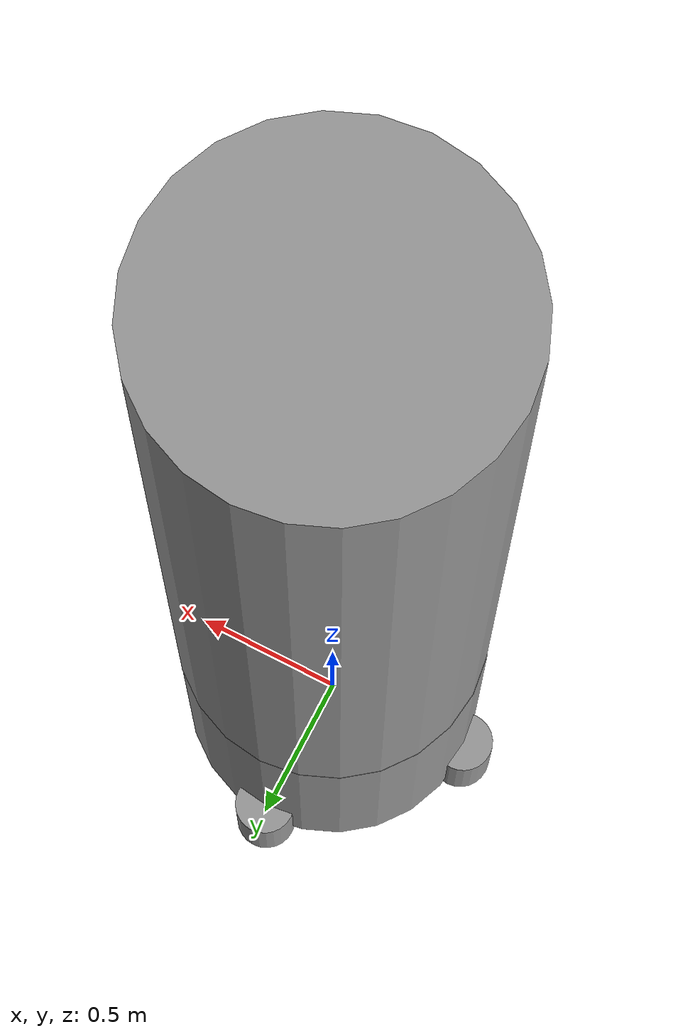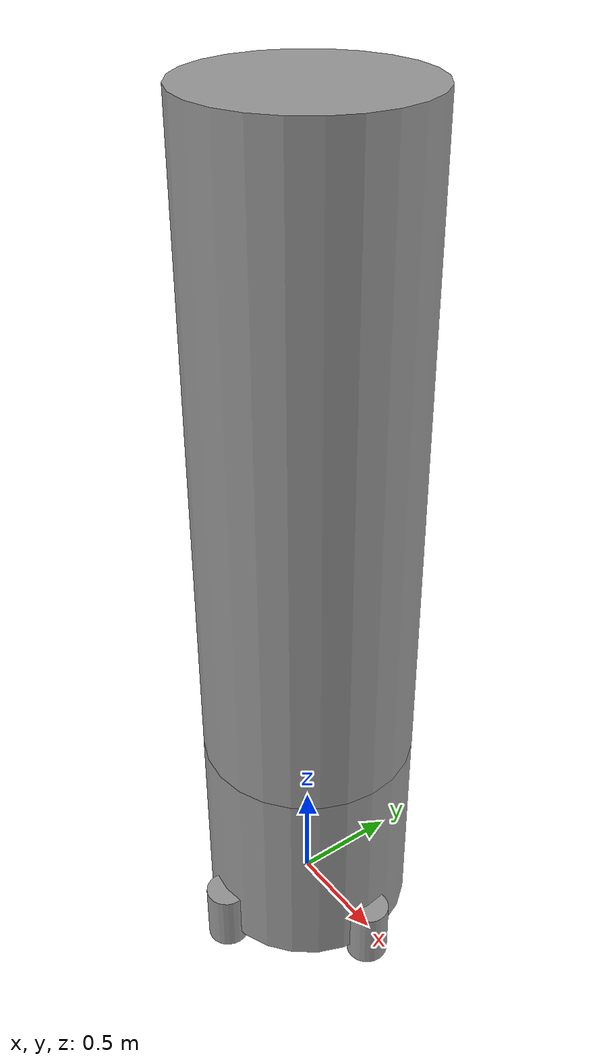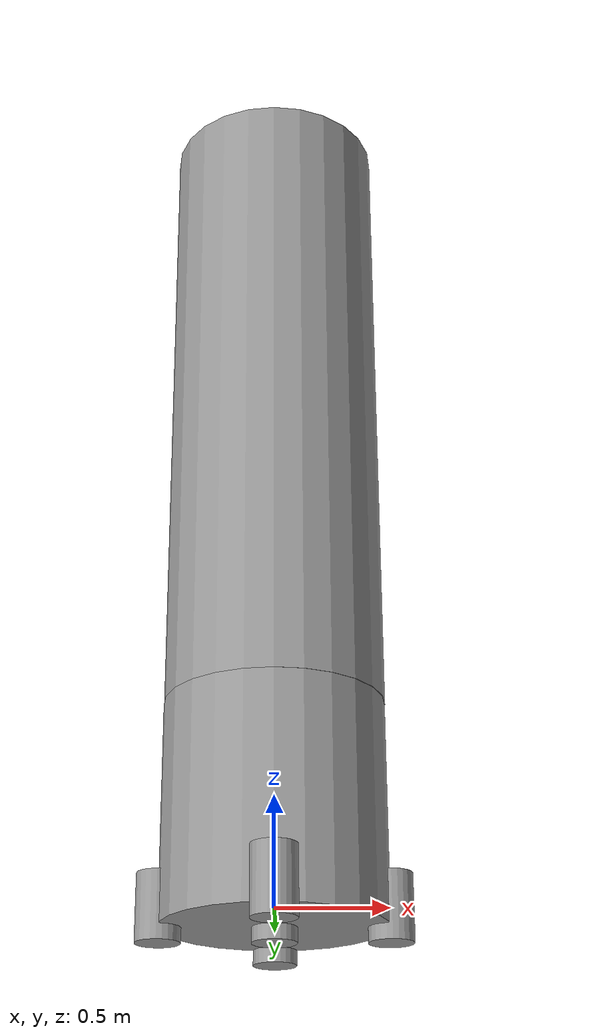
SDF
<?xml version='1.0'?>
<sdf version='1.6'>
  <model name='rocket_test_circular_top'>
    <link name='link_0'>
      <pose frame=''>-0.001784 0.000452 0.416667 0 -0 0</pose>
      <inertial>
        <mass>1</mass>
        <inertia>
          <ixx>0.166667</ixx>
          <ixy>0</ixy>
          <ixz>0</ixz>
          <iyy>0.166667</iyy>
          <iyz>0</iyz>
          <izz>0.166667</izz>
        </inertia>
        <pose frame=''>0 0 0 0 -0 0</pose>
      </inertial>
      <self_collide>0</self_collide>
      <kinematic>0</kinematic>
      <visual name='visual'>
        <pose frame=''>0 0 0 0 -0 0</pose>
        <geometry>
          <cylinder>
            <radius>0.5</radius>
            <length>1</length>
          </cylinder>
        </geometry>
        <material>
          <lighting>1</lighting>
          <script>
            <uri>file://media/materials/scripts/gazebo.material</uri>
            <name>Gazebo/Grey</name>
          </script>
          <ambient>0.3 0.3 0.3 1</ambient>
          <diffuse>0.7 0.7 0.7 1</diffuse>
          <specular>0.01 0.01 0.01 1</specular>
          <emissive>0 0 0 1</emissive>
          <shader type='vertex'>
            <normal_map>__default__</normal_map>
          </shader>
        </material>
        <transparency>0</transparency>
        <cast_shadows>1</cast_shadows>
      </visual>
      <collision name='collision'>
        <laser_retro>0</laser_retro>
        <max_contacts>10</max_contacts>
        <pose frame=''>0 0 0 0 -0 0</pose>
        <geometry>
          <cylinder>
            <radius>0.5</radius>
            <length>1</length>
          </cylinder>
        </geometry>
        <surface>
          <friction>
            <ode>
              <mu>1</mu>
              <mu2>1</mu2>
              <fdir1>0 0 0</fdir1>
              <slip1>0</slip1>
              <slip2>0</slip2>
            </ode>
            <torsional>
              <coefficient>1</coefficient>
              <patch_radius>0</patch_radius>
              <surface_radius>0</surface_radius>
              <use_patch_radius>1</use_patch_radius>
              <ode>
                <slip>0</slip>
              </ode>
            </torsional>
          </friction>
          <bounce>
            <restitution_coefficient>0</restitution_coefficient>
            <threshold>1e+06</threshold>
          </bounce>
          <contact>
            <collide_without_contact>0</collide_without_contact>
            <collide_without_contact_bitmask>1</collide_without_contact_bitmask>
            <collide_bitmask>1</collide_bitmask>
            <ode>
              <soft_cfm>0</soft_cfm>
              <soft_erp>0.2</soft_erp>
              <kp>1e+13</kp>
              <kd>1</kd>
              <max_vel>0.01</max_vel>
              <min_depth>0</min_depth>
            </ode>
            <bullet>
              <split_impulse>1</split_impulse>
              <split_impulse_penetration_threshold>-0.01</split_impulse_penetration_threshold>
              <soft_cfm>0</soft_cfm>
              <soft_erp>0.2</soft_erp>
              <kp>1e+13</kp>
              <kd>1</kd>
            </bullet>
          </contact>
        </surface>
      </collision>
    </link>
    <link name='Center_thruster_link'>
      <pose frame=''>0 0 0 0 -0 0</pose>
      <inertial>
        <mass>0.1</mass>
        <inertia>
          <ixx>0.145833</ixx>
          <ixy>0</ixy>
          <ixz>0</ixz>
          <iyy>0.145833</iyy>
          <iyz>0</iyz>
          <izz>0.125</izz>
        </inertia>
        <pose frame=''>0 0 0 0 -0 0</pose>
      </inertial>
      <self_collide>0</self_collide>
      <kinematic>0</kinematic>
      <visual name='visual'>
        <pose frame=''>0 0 0 0 -0 0</pose>
        <geometry>
          <cylinder>
            <radius>0.1</radius>
            <length>0.3</length>
          </cylinder>
        </geometry>
        <material>
          <lighting>1</lighting>
          <script>
            <uri>file://media/materials/scripts/gazebo.material</uri>
            <name>Gazebo/Grey</name>
          </script>
          <ambient>0.3 0.3 0.3 1</ambient>
          <diffuse>0.7 0.7 0.7 1</diffuse>
          <specular>0.01 0.01 0.01 1</specular>
          <emissive>0 0 0 1</emissive>
          <shader type='vertex'>
            <normal_map>__default__</normal_map>
          </shader>
        </material>
        <transparency>0</transparency>
        <cast_shadows>1</cast_shadows>
      </visual>
      <collision name='collision'>
        <laser_retro>0</laser_retro>
        <max_contacts>10</max_contacts>
        <pose frame=''>0 0 0 0 -0 0</pose>
        <geometry>
          <cylinder>
            <radius>0.1</radius>
            <length>0.3</length>
          </cylinder>
        </geometry>
        <surface>
          <friction>
            <ode>
              <mu>1</mu>
              <mu2>1</mu2>
              <fdir1>0 0 0</fdir1>
              <slip1>0</slip1>
              <slip2>0</slip2>
            </ode>
            <torsional>
              <coefficient>1</coefficient>
              <patch_radius>0</patch_radius>
              <surface_radius>0</surface_radius>
              <use_patch_radius>1</use_patch_radius>
              <ode>
                <slip>0</slip>
              </ode>
            </torsional>
          </friction>
          <bounce>
            <restitution_coefficient>0</restitution_coefficient>
            <threshold>1e+06</threshold>
          </bounce>
          <contact>
            <collide_without_contact>0</collide_without_contact>
            <collide_without_contact_bitmask>1</collide_without_contact_bitmask>
            <collide_bitmask>1</collide_bitmask>
            <ode>
              <soft_cfm>0</soft_cfm>
              <soft_erp>0.2</soft_erp>
              <kp>1e+13</kp>
              <kd>1</kd>
              <max_vel>0.01</max_vel>
              <min_depth>0</min_depth>
            </ode>
            <bullet>
              <split_impulse>1</split_impulse>
              <split_impulse_penetration_threshold>-0.01</split_impulse_penetration_threshold>
              <soft_cfm>0</soft_cfm>
              <soft_erp>0.2</soft_erp>
              <kp>1e+13</kp>
              <kd>1</kd>
            </bullet>
          </contact>
        </surface>
      </collision>
    </link>
    <link name='Side_thruster_1_link'>
      <pose frame=''>0 0.5 -0 0 -0 0</pose>
      <inertial>
        <mass>0.1</mass>
        <inertia>
          <ixx>0.145833</ixx>
          <ixy>0</ixy>
          <ixz>0</ixz>
          <iyy>0.145833</iyy>
          <iyz>0</iyz>
          <izz>0.125</izz>
        </inertia>
        <pose frame=''>0 0 0 0 -0 0</pose>
      </inertial>
      <self_collide>0</self_collide>
      <kinematic>0</kinematic>
      <visual name='visual'>
        <pose frame=''>0 0 0 0 -0 0</pose>
        <geometry>
          <cylinder>
            <radius>0.1</radius>
            <length>0.3</length>
          </cylinder>
        </geometry>
        <material>
          <lighting>1</lighting>
          <script>
            <uri>file://media/materials/scripts/gazebo.material</uri>
            <name>Gazebo/Grey</name>
          </script>
          <ambient>0.3 0.3 0.3 1</ambient>
          <diffuse>0.7 0.7 0.7 1</diffuse>
          <specular>0.01 0.01 0.01 1</specular>
          <emissive>0 0 0 1</emissive>
          <shader type='vertex'>
            <normal_map>__default__</normal_map>
          </shader>
        </material>
        <transparency>0</transparency>
        <cast_shadows>1</cast_shadows>
      </visual>
      <collision name='collision'>
        <laser_retro>0</laser_retro>
        <max_contacts>10</max_contacts>
        <pose frame=''>0 0 0 0 -0 0</pose>
        <geometry>
          <cylinder>
            <radius>0.1</radius>
            <length>0.3</length>
          </cylinder>
        </geometry>
        <surface>
          <friction>
            <ode>
              <mu>1</mu>
              <mu2>1</mu2>
              <fdir1>0 0 0</fdir1>
              <slip1>0</slip1>
              <slip2>0</slip2>
            </ode>
            <torsional>
              <coefficient>1</coefficient>
              <patch_radius>0</patch_radius>
              <surface_radius>0</surface_radius>
              <use_patch_radius>1</use_patch_radius>
              <ode>
                <slip>0</slip>
              </ode>
            </torsional>
          </friction>
          <bounce>
            <restitution_coefficient>0</restitution_coefficient>
            <threshold>1e+06</threshold>
          </bounce>
          <contact>
            <collide_without_contact>0</collide_without_contact>
            <collide_without_contact_bitmask>1</collide_without_contact_bitmask>
            <collide_bitmask>1</collide_bitmask>
            <ode>
              <soft_cfm>0</soft_cfm>
              <soft_erp>0.2</soft_erp>
              <kp>1e+13</kp>
              <kd>1</kd>
              <max_vel>0.01</max_vel>
              <min_depth>0</min_depth>
            </ode>
            <bullet>
              <split_impulse>1</split_impulse>
              <split_impulse_penetration_threshold>-0.01</split_impulse_penetration_threshold>
              <soft_cfm>0</soft_cfm>
              <soft_erp>0.2</soft_erp>
              <kp>1e+13</kp>
              <kd>1</kd>
            </bullet>
          </contact>
        </surface>
      </collision>
    </link>
    <link name='Side_thruster_2_link'>
      <pose frame=''>-0 -0.5 0 0 -0 0</pose>
      <inertial>
        <mass>0.1</mass>
        <inertia>
          <ixx>0.145833</ixx>
          <ixy>0</ixy>
          <ixz>0</ixz>
          <iyy>0.145833</iyy>
          <iyz>0</iyz>
          <izz>0.125</izz>
        </inertia>
        <pose frame=''>0 0 0 0 -0 0</pose>
      </inertial>
      <self_collide>0</self_collide>
      <kinematic>0</kinematic>
      <visual name='visual'>
        <pose frame=''>0 0 0 0 -0 0</pose>
        <geometry>
          <cylinder>
            <radius>0.1</radius>
            <length>0.3</length>
          </cylinder>
        </geometry>
        <material>
          <lighting>1</lighting>
          <script>
            <uri>file://media/materials/scripts/gazebo.material</uri>
            <name>Gazebo/Grey</name>
          </script>
          <ambient>0.3 0.3 0.3 1</ambient>
          <diffuse>0.7 0.7 0.7 1</diffuse>
          <specular>0.01 0.01 0.01 1</specular>
          <emissive>0 0 0 1</emissive>
          <shader type='vertex'>
            <normal_map>__default__</normal_map>
          </shader>
        </material>
        <transparency>0</transparency>
        <cast_shadows>1</cast_shadows>
      </visual>
      <collision name='collision'>
        <laser_retro>0</laser_retro>
        <max_contacts>10</max_contacts>
        <pose frame=''>0 0 0 0 -0 0</pose>
        <geometry>
          <cylinder>
            <radius>0.1</radius>
            <length>0.3</length>
          </cylinder>
        </geometry>
        <surface>
          <friction>
            <ode>
              <mu>1</mu>
              <mu2>1</mu2>
              <fdir1>0 0 0</fdir1>
              <slip1>0</slip1>
              <slip2>0</slip2>
            </ode>
            <torsional>
              <coefficient>1</coefficient>
              <patch_radius>0</patch_radius>
              <surface_radius>0</surface_radius>
              <use_patch_radius>1</use_patch_radius>
              <ode>
                <slip>0</slip>
              </ode>
            </torsional>
          </friction>
          <bounce>
            <restitution_coefficient>0</restitution_coefficient>
            <threshold>1e+06</threshold>
          </bounce>
          <contact>
            <collide_without_contact>0</collide_without_contact>
            <collide_without_contact_bitmask>1</collide_without_contact_bitmask>
            <collide_bitmask>1</collide_bitmask>
            <ode>
              <soft_cfm>0</soft_cfm>
              <soft_erp>0.2</soft_erp>
              <kp>1e+13</kp>
              <kd>1</kd>
              <max_vel>0.01</max_vel>
              <min_depth>0</min_depth>
            </ode>
            <bullet>
              <split_impulse>1</split_impulse>
              <split_impulse_penetration_threshold>-0.01</split_impulse_penetration_threshold>
              <soft_cfm>0</soft_cfm>
              <soft_erp>0.2</soft_erp>
              <kp>1e+13</kp>
              <kd>1</kd>
            </bullet>
          </contact>
        </surface>
      </collision>
    </link>
    <link name='Side_thruster_3_link'>
      <pose frame=''>-0.5 0 -0 0 -0 0</pose>
      <inertial>
        <mass>0.1</mass>
        <inertia>
          <ixx>0.145833</ixx>
          <ixy>0</ixy>
          <ixz>0</ixz>
          <iyy>0.145833</iyy>
          <iyz>0</iyz>
          <izz>0.125</izz>
        </inertia>
        <pose frame=''>0 0 0 0 -0 0</pose>
      </inertial>
      <self_collide>0</self_collide>
      <kinematic>0</kinematic>
      <visual name='visual'>
        <pose frame=''>0 0 0 0 -0 0</pose>
        <geometry>
          <cylinder>
            <radius>0.1</radius>
            <length>0.3</length>
          </cylinder>
        </geometry>
        <material>
          <lighting>1</lighting>
          <script>
            <uri>file://media/materials/scripts/gazebo.material</uri>
            <name>Gazebo/Grey</name>
          </script>
          <ambient>0.3 0.3 0.3 1</ambient>
          <diffuse>0.7 0.7 0.7 1</diffuse>
          <specular>0.01 0.01 0.01 1</specular>
          <emissive>0 0 0 1</emissive>
          <shader type='vertex'>
            <normal_map>__default__</normal_map>
          </shader>
        </material>
        <transparency>0</transparency>
        <cast_shadows>1</cast_shadows>
      </visual>
      <collision name='collision'>
        <laser_retro>0</laser_retro>
        <max_contacts>10</max_contacts>
        <pose frame=''>0 0 0 0 -0 0</pose>
        <geometry>
          <cylinder>
            <radius>0.1</radius>
            <length>0.3</length>
          </cylinder>
        </geometry>
        <surface>
          <friction>
            <ode>
              <mu>1</mu>
              <mu2>1</mu2>
              <fdir1>0 0 0</fdir1>
              <slip1>0</slip1>
              <slip2>0</slip2>
            </ode>
            <torsional>
              <coefficient>1</coefficient>
              <patch_radius>0</patch_radius>
              <surface_radius>0</surface_radius>
              <use_patch_radius>1</use_patch_radius>
              <ode>
                <slip>0</slip>
              </ode>
            </torsional>
          </friction>
          <bounce>
            <restitution_coefficient>0</restitution_coefficient>
            <threshold>1e+06</threshold>
          </bounce>
          <contact>
            <collide_without_contact>0</collide_without_contact>
            <collide_without_contact_bitmask>1</collide_without_contact_bitmask>
            <collide_bitmask>1</collide_bitmask>
            <ode>
              <soft_cfm>0</soft_cfm>
              <soft_erp>0.2</soft_erp>
              <kp>1e+13</kp>
              <kd>1</kd>
              <max_vel>0.01</max_vel>
              <min_depth>0</min_depth>
            </ode>
            <bullet>
              <split_impulse>1</split_impulse>
              <split_impulse_penetration_threshold>-0.01</split_impulse_penetration_threshold>
              <soft_cfm>0</soft_cfm>
              <soft_erp>0.2</soft_erp>
              <kp>1e+13</kp>
              <kd>1</kd>
            </bullet>
          </contact>
        </surface>
      </collision>
    </link>
    <link name='Side_thruster_4_link'>
      <pose frame=''>0.5 -0 0 0 -0 0</pose>
      <inertial>
        <mass>0.1</mass>
        <inertia>
          <ixx>0.145833</ixx>
          <ixy>0</ixy>
          <ixz>0</ixz>
          <iyy>0.145833</iyy>
          <iyz>0</iyz>
          <izz>0.125</izz>
        </inertia>
        <pose frame=''>0 0 0 0 -0 0</pose>
      </inertial>
      <self_collide>0</self_collide>
      <kinematic>0</kinematic>
      <visual name='visual'>
        <pose frame=''>0 0 0 0 -0 0</pose>
        <geometry>
          <cylinder>
            <radius>0.1</radius>
            <length>0.3</length>
          </cylinder>
        </geometry>
        <material>
          <lighting>1</lighting>
          <script>
            <uri>file://media/materials/scripts/gazebo.material</uri>
            <name>Gazebo/Grey</name>
          </script>
          <ambient>0.3 0.3 0.3 1</ambient>
          <diffuse>0.7 0.7 0.7 1</diffuse>
          <specular>0.01 0.01 0.01 1</specular>
          <emissive>0 0 0 1</emissive>
          <shader type='vertex'>
            <normal_map>__default__</normal_map>
          </shader>
        </material>
        <transparency>0</transparency>
        <cast_shadows>1</cast_shadows>
      </visual>
      <collision name='collision'>
        <laser_retro>0</laser_retro>
        <max_contacts>10</max_contacts>
        <pose frame=''>0 0 0 0 -0 0</pose>
        <geometry>
          <cylinder>
            <radius>0.1</radius>
            <length>0.3</length>
          </cylinder>
        </geometry>
        <surface>
          <friction>
            <ode>
              <mu>1</mu>
              <mu2>1</mu2>
              <fdir1>0 0 0</fdir1>
              <slip1>0</slip1>
              <slip2>0</slip2>
            </ode>
            <torsional>
              <coefficient>1</coefficient>
              <patch_radius>0</patch_radius>
              <surface_radius>0</surface_radius>
              <use_patch_radius>1</use_patch_radius>
              <ode>
                <slip>0</slip>
              </ode>
            </torsional>
          </friction>
          <bounce>
            <restitution_coefficient>0</restitution_coefficient>
            <threshold>1e+06</threshold>
          </bounce>
          <contact>
            <collide_without_contact>0</collide_without_contact>
            <collide_without_contact_bitmask>1</collide_without_contact_bitmask>
            <collide_bitmask>1</collide_bitmask>
            <ode>
              <soft_cfm>0</soft_cfm>
              <soft_erp>0.2</soft_erp>
              <kp>1e+13</kp>
              <kd>1</kd>
              <max_vel>0.01</max_vel>
              <min_depth>0</min_depth>
            </ode>
            <bullet>
              <split_impulse>1</split_impulse>
              <split_impulse_penetration_threshold>-0.01</split_impulse_penetration_threshold>
              <soft_cfm>0</soft_cfm>
              <soft_erp>0.2</soft_erp>
              <kp>1e+13</kp>
              <kd>1</kd>
            </bullet>
          </contact>
        </surface>
      </collision>
    </link>
    <link name='link_0_clone'>
      <pose frame=''>0 -0 2.41667 0 -0 -0.000146</pose>
      <inertial>
        <mass>1</mass>
        <inertia>
          <ixx>0.166667</ixx>
          <ixy>0</ixy>
          <ixz>0</ixz>
          <iyy>0.166667</iyy>
          <iyz>0</iyz>
          <izz>0.166667</izz>
        </inertia>
        <pose frame=''>0 0 0 0 -0 0</pose>
      </inertial>
      <self_collide>0</self_collide>
      <kinematic>0</kinematic>
      <gravity>1</gravity>
      <visual name='visual'>
        <pose frame=''>0 0 0 0 -0 0</pose>
        <geometry>
          <cylinder>
            <radius>0.5</radius>
            <length>3</length>
          </cylinder>
        </geometry>
        <material>
          <lighting>1</lighting>
          <script>
            <uri>file://media/materials/scripts/gazebo.material</uri>
            <name>Gazebo/Grey</name>
          </script>
          <ambient>0.3 0.3 0.3 1</ambient>
          <diffuse>0.7 0.7 0.7 1</diffuse>
          <specular>0.01 0.01 0.01 1</specular>
          <emissive>0 0 0 1</emissive>
          <shader type='vertex'>
            <normal_map>__default__</normal_map>
          </shader>
        </material>
        <transparency>0</transparency>
        <cast_shadows>1</cast_shadows>
      </visual>
      <collision name='collision'>
        <laser_retro>0</laser_retro>
        <max_contacts>10</max_contacts>
        <pose frame=''>0 0 0 0 -0 0</pose>
        <geometry>
          <cylinder>
            <radius>0.5</radius>
            <length>3</length>
          </cylinder>
        </geometry>
        <surface>
          <friction>
            <ode>
              <mu>1</mu>
              <mu2>1</mu2>
              <fdir1>0 0 0</fdir1>
              <slip1>0</slip1>
              <slip2>0</slip2>
            </ode>
            <torsional>
              <coefficient>1</coefficient>
              <patch_radius>0</patch_radius>
              <surface_radius>0</surface_radius>
              <use_patch_radius>1</use_patch_radius>
              <ode>
                <slip>0</slip>
              </ode>
            </torsional>
          </friction>
          <bounce>
            <restitution_coefficient>0</restitution_coefficient>
            <threshold>1e+06</threshold>
          </bounce>
          <contact>
            <collide_without_contact>0</collide_without_contact>
            <collide_without_contact_bitmask>1</collide_without_contact_bitmask>
            <collide_bitmask>1</collide_bitmask>
            <ode>
              <soft_cfm>0</soft_cfm>
              <soft_erp>0.2</soft_erp>
              <kp>1e+13</kp>
              <kd>1</kd>
              <max_vel>0.01</max_vel>
              <min_depth>0</min_depth>
            </ode>
            <bullet>
              <split_impulse>1</split_impulse>
              <split_impulse_penetration_threshold>-0.01</split_impulse_penetration_threshold>
              <soft_cfm>0</soft_cfm>
              <soft_erp>0.2</soft_erp>
              <kp>1e+13</kp>
              <kd>1</kd>
            </bullet>
          </contact>
        </surface>
      </collision>
    </link>
    <joint name='link_0_JOINT_0_0' type='fixed'>
      <parent>link_0</parent>
      <child>link_0_clone</child>
      <pose frame=''>0 0 0 0 -0 0</pose>
      <physics>
        <ode>
          <limit>
            <cfm>0</cfm>
            <erp>0.2</erp>
          </limit>
          <suspension>
            <cfm>0</cfm>
            <erp>0.2</erp>
          </suspension>
        </ode>
      </physics>
    </joint>
    <joint name='link_0_JOINT_0' type='fixed'>
      <parent>link_0</parent>
      <child>Center_thruster_link</child>
      <pose frame=''>0 0 0 0 -0 0</pose>
      <physics>
        <ode>
          <limit>
            <cfm>0</cfm>
            <erp>0.2</erp>
          </limit>
          <suspension>
            <cfm>0</cfm>
            <erp>0.2</erp>
          </suspension>
        </ode>
      </physics>
    </joint>
    <joint name='link_0_JOINT_1' type='fixed'>
      <parent>link_0</parent>
      <child>Side_thruster_3_link</child>
      <pose frame=''>0 0 0 0 -0 0</pose>
      <physics>
        <ode>
          <limit>
            <cfm>0</cfm>
            <erp>0.2</erp>
          </limit>
          <suspension>
            <cfm>0</cfm>
            <erp>0.2</erp>
          </suspension>
        </ode>
      </physics>
    </joint>
    <joint name='link_0_JOINT_2' type='fixed'>
      <parent>link_0</parent>
      <child>Side_thruster_1_link</child>
      <pose frame=''>0 0 0 0 -0 0</pose>
      <physics>
        <ode>
          <limit>
            <cfm>0</cfm>
            <erp>0.2</erp>
          </limit>
          <suspension>
            <cfm>0</cfm>
            <erp>0.2</erp>
          </suspension>
        </ode>
      </physics>
    </joint>
    <joint name='link_0_JOINT_3' type='fixed'>
      <parent>link_0</parent>
      <child>Side_thruster_4_link</child>
      <pose frame=''>0 0 0 0 -0 0</pose>
      <physics>
        <ode>
          <limit>
            <cfm>0</cfm>
            <erp>0.2</erp>
          </limit>
          <suspension>
            <cfm>0</cfm>
            <erp>0.2</erp>
          </suspension>
        </ode>
      </physics>
    </joint>
    <joint name='link_0_JOINT_4' type='fixed'>
      <parent>link_0</parent>
      <child>Side_thruster_2_link</child>
      <pose frame=''>0 0 0 0 -0 0</pose>
      <physics>
        <ode>
          <limit>
            <cfm>0</cfm>
            <erp>0.2</erp>
          </limit>
          <suspension>
            <cfm>0</cfm>
            <erp>0.2</erp>
          </suspension>
        </ode>
      </physics>
    </joint>
    <static>0</static>
    <allow_auto_disable>1</allow_auto_disable>
  </model>
</sdf>
